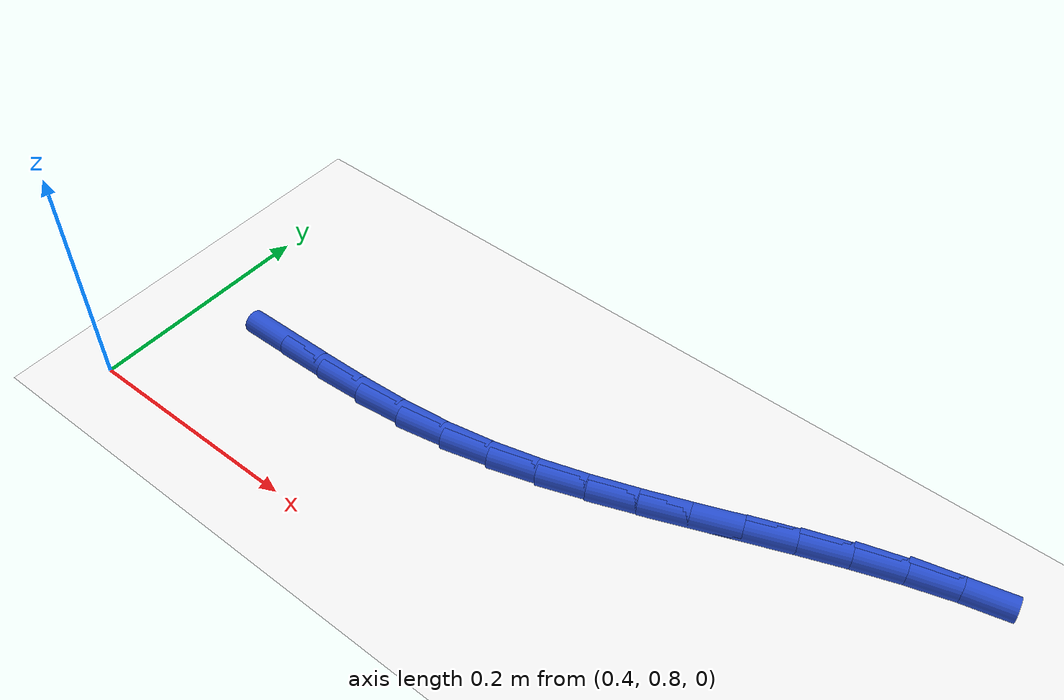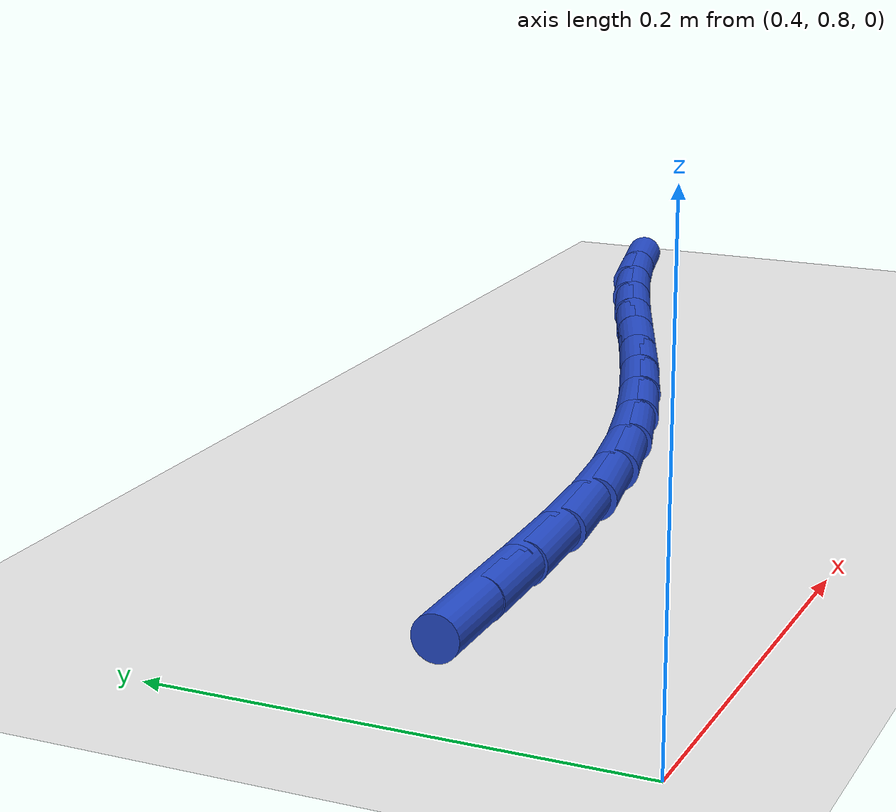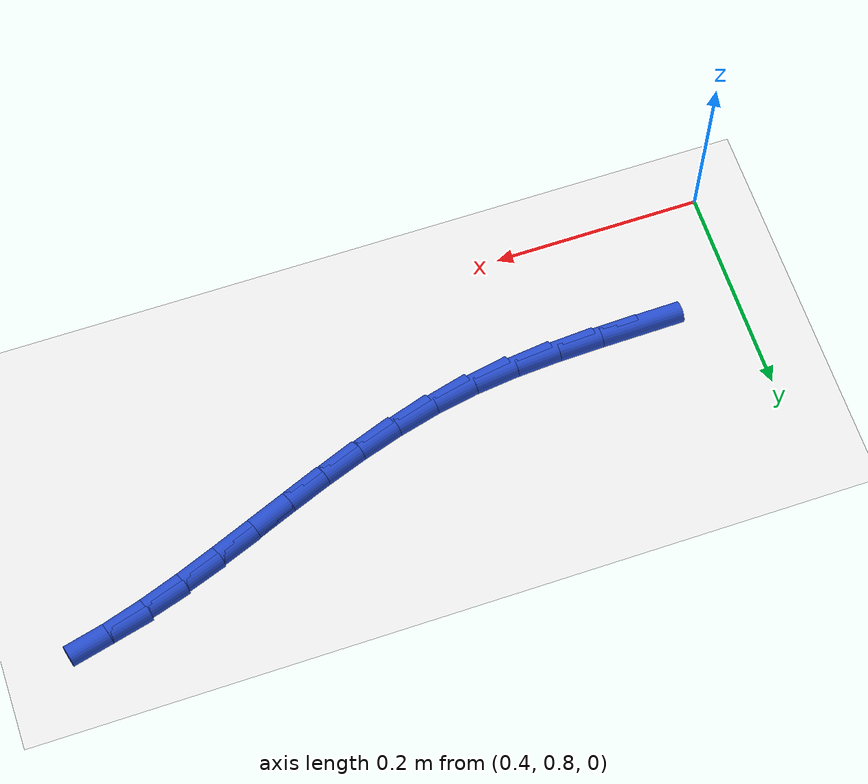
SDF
<sdf version="1.6">
 <world name="default">
  <model name="ground_plane">
   <static>1</static>
   <link name="link">
    <collision name="collision">
     <geometry><plane><normal>0 0 1</normal><size>100 100</size></plane></geometry>
     <surface><friction><ode><mu>100</mu><mu2>50</mu2></ode></friction></surface>
    </collision>
    <visual name="visual">
     <cast_shadows>0</cast_shadows>
     <geometry><plane><normal>0 0 1</normal><size>100 100</size></plane></geometry>
     <material>
      <script><uri>file://media/materials/scripts/gazebo.material</uri><name>Gazebo/WhiteGlow</name></script>
     </material>
    </visual>
   </link>
  </model>
  <model name="line">
   <link name="link_29">
    <pose>0.49771204153086834 0.910237533438734 0.01 0 1.57 0.013899093795391119</pose>
    <collision name="collision">
     <geometry><cylinder><radius>0.01</radius><length>0.08</length></cylinder></geometry>
    </collision>
    <visual name="visual">
     <material>
      <script><name>Gazebo/Blue</name><uri>file://media/materials/scripts/gazebo.material</uri></script>
     </material>
     <geometry><cylinder><radius>0.01</radius><length>0.08</length></cylinder></geometry>
    </visual>
   </link>
   <link name="link_30">
    <pose>0.5401212171611854 0.9108270205090762 0.01 0 1.57 0.027382936643818134</pose>
    <collision name="collision">
     <geometry><cylinder><radius>0.01</radius><length>0.08</length></cylinder></geometry>
    </collision>
    <visual name="visual">
     <material>
      <script><name>Gazebo/Blue</name><uri>file://media/materials/scripts/gazebo.material</uri></script>
     </material>
     <geometry><cylinder><radius>0.01</radius><length>0.08</length></cylinder></geometry>
    </visual>
   </link>
   <link name="link_31">
    <pose>0.5827288801444511 0.9119940351453385 0.01 0 1.57 0.06081464934989108</pose>
    <collision name="collision">
     <geometry><cylinder><radius>0.01</radius><length>0.08</length></cylinder></geometry>
    </collision>
    <visual name="visual">
     <material>
      <script><name>Gazebo/Blue</name><uri>file://media/materials/scripts/gazebo.material</uri></script>
     </material>
     <geometry><cylinder><radius>0.01</radius><length>0.08</length></cylinder></geometry>
    </visual>
   </link>
   <link name="link_32">
    <pose>0.6250645195996315 0.9145718409351585 0.01 0 1.57 0.1154125492884915</pose>
    <collision name="collision">
     <geometry><cylinder><radius>0.01</radius><length>0.08</length></cylinder></geometry>
    </collision>
    <visual name="visual">
     <material>
      <script><name>Gazebo/Blue</name><uri>file://media/materials/scripts/gazebo.material</uri></script>
     </material>
     <geometry><cylinder><radius>0.01</radius><length>0.08</length></cylinder></geometry>
    </visual>
   </link>
   <link name="link_33">
    <pose>0.6666576544004259 0.9193936385630586 0.01 0 1.57 0.1861184933495123</pose>
    <collision name="collision">
     <geometry><cylinder><radius>0.01</radius><length>0.08</length></cylinder></geometry>
    </collision>
    <visual name="visual">
     <material>
      <script><name>Gazebo/Blue</name><uri>file://media/materials/scripts/gazebo.material</uri></script>
     </material>
     <geometry><cylinder><radius>0.01</radius><length>0.08</length></cylinder></geometry>
    </visual>
   </link>
   <link name="link_34">
    <pose>0.7071661500160438 0.9270212970697462 0.01 0 1.57 0.25037352740552854</pose>
    <collision name="collision">
     <geometry><cylinder><radius>0.01</radius><length>0.08</length></cylinder></geometry>
    </collision>
    <visual name="visual">
     <material>
      <script><name>Gazebo/Blue</name><uri>file://media/materials/scripts/gazebo.material</uri></script>
     </material>
     <geometry><cylinder><radius>0.01</radius><length>0.08</length></cylinder></geometry>
    </visual>
   </link>
   <link name="link_35">
    <pose>0.7466701175366293 0.9371240354184832 0.01 0 1.57 0.3024261193298521</pose>
    <collision name="collision">
     <geometry><cylinder><radius>0.01</radius><length>0.08</length></cylinder></geometry>
    </collision>
    <visual name="visual">
     <material>
      <script><name>Gazebo/Blue</name><uri>file://media/materials/scripts/gazebo.material</uri></script>
     </material>
     <geometry><cylinder><radius>0.01</radius><length>0.08</length></cylinder></geometry>
    </visual>
   </link>
   <link name="link_36">
    <pose>0.7853363733828381 0.9491877728148566 0.01 0 1.57 0.3416433908659524</pose>
    <collision name="collision">
     <geometry><cylinder><radius>0.01</radius><length>0.08</length></cylinder></geometry>
    </collision>
    <visual name="visual">
     <material>
      <script><name>Gazebo/Blue</name><uri>file://media/materials/scripts/gazebo.material</uri></script>
     </material>
     <geometry><cylinder><radius>0.01</radius><length>0.08</length></cylinder></geometry>
    </visual>
   </link>
   <link name="link_37">
    <pose>0.8233317339753262 0.9626984284644536 0.01 0 1.57 0.3677260126980559</pose>
    <collision name="collision">
     <geometry><cylinder><radius>0.01</radius><length>0.08</length></cylinder></geometry>
    </collision>
    <visual name="visual">
     <material>
      <script><name>Gazebo/Blue</name><uri>file://media/materials/scripts/gazebo.material</uri></script>
     </material>
     <geometry><cylinder><radius>0.01</radius><length>0.08</length></cylinder></geometry>
    </visual>
   </link>
   <link name="link_38">
    <pose>0.8608230157347494 0.9771419215728614 0.01 0 1.57 0.38052127386642065</pose>
    <collision name="collision">
     <geometry><cylinder><radius>0.01</radius><length>0.08</length></cylinder></geometry>
    </collision>
    <visual name="visual">
     <material>
      <script><name>Gazebo/Blue</name><uri>file://media/materials/scripts/gazebo.material</uri></script>
     </material>
     <geometry><cylinder><radius>0.01</radius><length>0.08</length></cylinder></geometry>
    </visual>
   </link>
   <link name="link_39">
    <pose>0.8979770350817641 0.9920041713456675 0.01 0 1.57 0.3798884362495175</pose>
    <collision name="collision">
     <geometry><cylinder><radius>0.01</radius><length>0.08</length></cylinder></geometry>
    </collision>
    <visual name="visual">
     <material>
      <script><name>Gazebo/Blue</name><uri>file://media/materials/scripts/gazebo.material</uri></script>
     </material>
     <geometry><cylinder><radius>0.01</radius><length>0.08</length></cylinder></geometry>
    </visual>
   </link>
   <link name="link_40">
    <pose>0.9349606084370259 1.0067710969884591 0.01 0 1.57 0.36562912412861653</pose>
    <collision name="collision">
     <geometry><cylinder><radius>0.01</radius><length>0.08</length></cylinder></geometry>
    </collision>
    <visual name="visual">
     <material>
      <script><name>Gazebo/Blue</name><uri>file://media/materials/scripts/gazebo.material</uri></script>
     </material>
     <geometry><cylinder><radius>0.01</radius><length>0.08</length></cylinder></geometry>
    </visual>
   </link>
   <link name="link_41">
    <pose>0.9719405522211906 1.0209286177068233 0.01 0 1.57 0.33748861234512556</pose>
    <collision name="collision">
     <geometry><cylinder><radius>0.01</radius><length>0.08</length></cylinder></geometry>
    </collision>
    <visual name="visual">
     <material>
      <script><name>Gazebo/Blue</name><uri>file://media/materials/scripts/gazebo.material</uri></script>
     </material>
     <geometry><cylinder><radius>0.01</radius><length>0.08</length></cylinder></geometry>
    </visual>
   </link>
   <link name="link_42">
    <pose>1.0090836828549146 1.0339626527063472 0.01 0 1.57 0.2952357071792602</pose>
    <collision name="collision">
     <geometry><cylinder><radius>0.01</radius><length>0.08</length></cylinder></geometry>
    </collision>
    <visual name="visual">
     <material>
      <script><name>Gazebo/Blue</name><uri>file://media/materials/scripts/gazebo.material</uri></script>
     </material>
     <geometry><cylinder><radius>0.01</radius><length>0.08</length></cylinder></geometry>
    </visual>
   </link>
   <link name="link_43">
    <pose>1.0465568167588537 1.0453591211926185 0.01 0 1.57 0.23883027747730567</pose>
    <collision name="collision">
     <geometry><cylinder><radius>0.01</radius><length>0.08</length></cylinder></geometry>
    </collision>
    <visual name="visual">
     <material>
      <script><name>Gazebo/Blue</name><uri>file://media/materials/scripts/gazebo.material</uri></script>
     </material>
     <geometry><cylinder><radius>0.01</radius><length>0.08</length></cylinder></geometry>
    </visual>
   </link>
  </model>
 </world>
</sdf>
